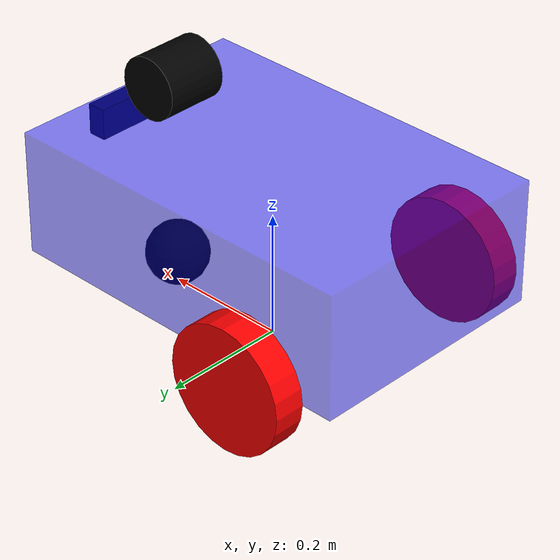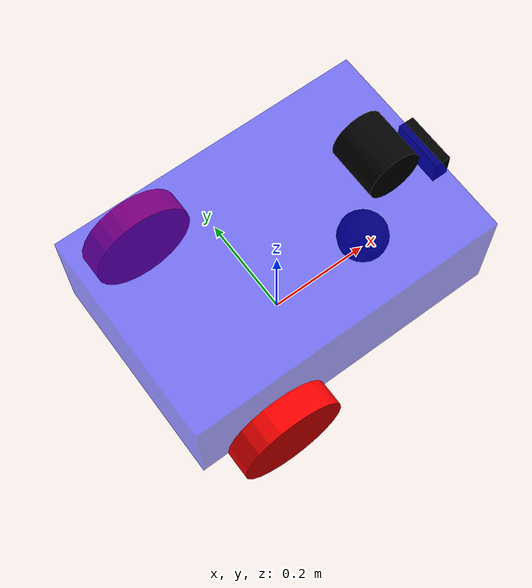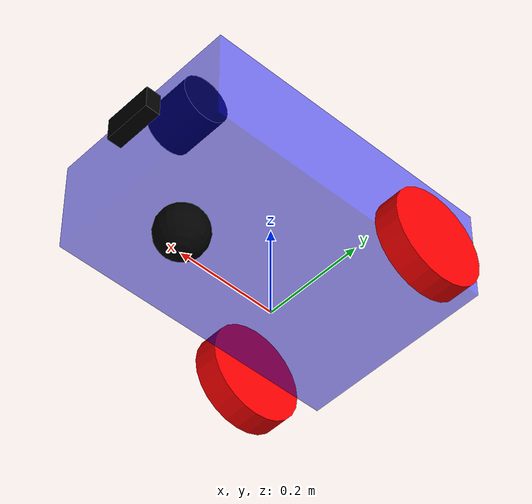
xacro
<?xml version="1.0"?>
<robot name="mobile_robot" xmlns:xacro="http://www.ros.org/wiki/xacro">

    <xacro:arg name="sim_mode" default="false"/>

    <xacro:include filename="inertial_macros.xacro" />
    <xacro:include filename="robot_core.xacro" />
    <xacro:include filename="camera.xacro" />
    <xacro:include filename="lidar.xacro" />
    <xacro:include filename="ros2_control.xacro" />

</robot>

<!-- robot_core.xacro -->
<robot xmlns:xacro="http://www.ros.org/wiki/xacro">

    <material name="blue">
        <color rgba="0 0 1 0.5"/>
    </material>

    <material name="red">
        <color rgba="1 0 0 1"/>
    </material>

    <material name="black">
        <color rgba="0 0 0 1"/>
    </material>

    <link name="base_footprint"/>

    <joint name="base_footprint_to_base_link_joint" type="fixed">
        <parent link="base_footprint"/>
        <child link="base_link"/>
        <origin xyz="0 0 0.1" rpy="0 0 0"/>
    </joint>

    <link name="base_link">
        <visual>
            <geometry>
                <box size="0.6 0.4 0.2"/>
            </geometry>
            <origin xyz="0 0 0.1" rpy="0 0 0"/>
            <material name="blue"/>
        </visual>
        <collision>
            <geometry>
                <box size="0.6 0.4 0.2"/>
            </geometry>
            <origin xyz="0 0 0.1" rpy="0 0 0"/>
        </collision>
        <inertial>
            <origin xyz="0 0 0.1" rpy="0 0 0"/>
            <mass value="2.0"/>
            <inertia ixx="0.033333" ixy="0.0" ixz="0.0"
                     iyy="0.066667" iyz="0.0"
                     izz="0.086667"/>
        </inertial>
    </link>

    <joint name="base_right_wheel_joint" type="continuous">
        <parent link="base_link"/>
        <child link="right_wheel_link"/>
        <origin xyz="-0.15 -0.225 0" rpy="0 0 0"/>
        <axis xyz="0 1 0"/>

        <limit effort="1000.0" velocity="100.0"/>
        <dynamics damping="0.1" friction="0.1"/>
    </joint>

    <link name="right_wheel_link">
        <visual>
            <geometry>
                <cylinder radius="0.1" length="0.05"/>
            </geometry>
            <origin xyz="0 0 0" rpy="1.57 0 0"/>
            <material name="red"/>
        </visual>
        <collision>
            <geometry>
                <cylinder radius="0.1" length="0.05"/>
            </geometry>
            <origin xyz="0 0 0" rpy="1.57 0 0"/>
        </collision>
        <inertial>
            <origin xyz="0 0 0" rpy="1.57 0 0"/>
            <mass value="2.5"/>
            <inertia ixx="0.006771" ixy="0.0" ixz="0.0"
                     iyy="0.006771" iyz="0.0"
                     izz="0.012500"/>
        </inertial>
    </link>

    <joint name="base_left_wheel_joint" type="continuous">
        <parent link="base_link"/>
        <child link="left_wheel_link"/>
        <origin xyz="-0.15 0.225 0" rpy="0 0 0"/>
        <axis xyz="0 1 0"/>

        <limit effort="1000.0" velocity="100.0"/>
        <dynamics damping="0.1" friction="0.1"/>
    </joint>

    <link name="left_wheel_link">
        <visual>
            <geometry>
                <cylinder radius="0.1" length="0.05"/>
            </geometry>
            <origin xyz="0 0 0" rpy="1.57 0 0"/>
            <material name="red"/>
        </visual>
        <collision>
            <geometry>
                <cylinder radius="0.1" length="0.05"/>
            </geometry>
            <origin xyz="0 0 0" rpy="1.57 0 0"/>
        </collision>
        <inertial>
            <origin xyz="0 0 0" rpy="1.57 0 0"/>
            <mass value="2.5"/>
            <inertia ixx="0.006771" ixy="0.0" ixz="0.0"
                     iyy="0.006771" iyz="0.0"
                     izz="0.012500"/>
        </inertial>
    </link>

    <joint name="base_castor_wheel_joint" type="fixed">
        <parent link="base_link"/>
        <child link="castor_wheel_link"/>
        <origin xyz="0.2 0 -0.05" rpy="0 0 0"/>
    </joint>

    <link name="castor_wheel_link">
        <visual>
            <geometry>
                <sphere radius="0.05" />
            </geometry>
            <origin xyz="0 0 0" rpy="0 0 0"/>
            <material name="black"/>
        </visual>
        <collision>
            <geometry>
                <sphere radius="0.05" />
            </geometry>
            <origin xyz="0 0 0" rpy="0 0 0"/>
        </collision>
        <inertial>
            <mass value="1.0"/>
            <origin xyz="0 0 0" rpy="0 0 0"/>
            <inertia ixx="0.001000" ixy="0.0" ixz="0.0"
                     iyy="0.001000" iyz="0.0"
                     izz="0.001000"/>
        </inertial>
    </link>

</robot>

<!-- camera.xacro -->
<robot xmlns:xacro="http://www.ros.org/wiki/xacro">

    <joint name="base_camera_joint" type="fixed">
        <parent link="base_link"/>
        <child link="camera_link"/>
        <origin xyz="0.315 0 0.15" rpy="0 0 0"/>
    </joint>

    <link name="camera_link">
        <visual>
            <geometry>
                <box size="0.03 0.1 0.05"/>
            </geometry>
            <origin xyz="0 0 0" rpy="0 0 0"/>
            <material name="black"/>
        </visual>
        <collision>
            <geometry>
                <box size="0.03 0.1 0.05"/>
            </geometry>
            <origin xyz="0 0 0" rpy="0 0 0"/>
        </collision>
        <inertial>
            <mass value="0.1"/>
            <origin xyz="0 0 0" rpy="0 0 0"/>
            <inertia ixx="0.000104" ixy="0.0" ixz="0.0"
                     iyy="0.000028" iyz="0.0"
                     izz="0.000091"/>
        </inertial>
    </link>
</robot>

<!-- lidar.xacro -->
<robot xmlns:xacro="http://www.ros.org/wiki/xacro">

    <joint name="base_scan_joint" type="fixed">
        <parent link="base_link"/>
        <child link="base_scan"/>
        <origin xyz="0.2 0 0.25" rpy="0 0 0"/>
    </joint>

    <link name="base_scan">
        <visual>
            <geometry>
                <cylinder radius="0.05" length="0.1"/>
            </geometry>
            <origin xyz="0 0 0" rpy="-1.5708 0 0"/>
            <material name="black"/>
        </visual>
        <collision>
            <geometry>
                <cylinder radius="0.05" length="0.1"/>
            </geometry>
            <origin xyz="0 0 0" rpy="-1.5708 0 0"/>
        </collision>
        <inertial>
            <mass value="0.1"/>
            <inertia ixx="0.000104" ixy="0.0" ixz="0.0"
                     iyy="0.000028" iyz="0.0"
                     izz="0.000091"/>
        </inertial>
    </link>

</robot>
